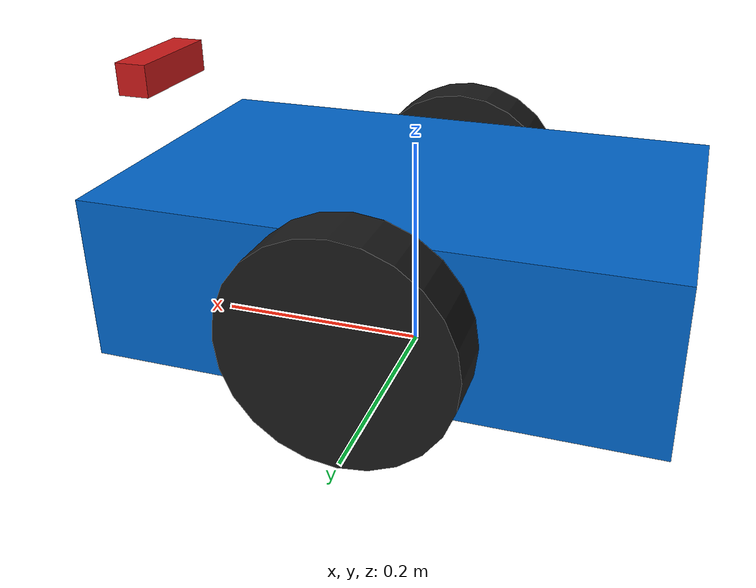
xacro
<?xml version="1.0"?>
<robot xmlns:xacro="http://www.ros.org/wiki/xacro" name="amr_robot">

  <material name="blue"><color rgba="0.0 0.4 0.8 1.0"/></material>
  <material name="black"><color rgba="0.1 0.1 0.1 1.0"/></material>
  <material name="red"><color rgba="0.8 0.1 0.1 1.0"/></material>

  <!-- Base Footprint -->
  <link name="base_footprint"/>

  <joint name="base_joint" type="fixed">
    <parent link="base_footprint"/>
    <child link="base_link"/>
    <origin xyz="0 0 0.1" rpy="0 0 0"/>
  </joint>

  <!-- Base Link -->
  <link name="base_link">
    <visual>
      <geometry><box size="0.5 0.3 0.15"/></geometry>
      <material name="blue"/>
    </visual>
    <collision>
      <geometry><box size="0.5 0.3 0.15"/></geometry>
    </collision>
    <inertial>
      <mass value="5.0"/>
      <inertia ixx="0.046" ixy="0" ixz="0" iyy="0.113" iyz="0" izz="0.141"/>
    </inertial>
  </link>

  <!-- Drive Wheels Macro -->
  <xacro:macro name="wheel" params="prefix y_reflect">
    <joint name="${prefix}_wheel_joint" type="continuous">
      <parent link="base_link"/>
      <child link="${prefix}_wheel"/>
      <origin xyz="0.0 ${y_reflect * 0.18} 0.0" rpy="-1.5707963 0 0"/>
      <axis xyz="0 0 1"/>
    </joint>

    <link name="${prefix}_wheel">
      <visual>
        <geometry><cylinder radius="0.1" length="0.05"/></geometry>
        <material name="black"/>
      </visual>
      <collision>
        <geometry><cylinder radius="0.1" length="0.05"/></geometry>
      </collision>
      <inertial>
        <mass value="1.0"/>
        <inertia ixx="0.0027" ixy="0" ixz="0" iyy="0.0027" iyz="0" izz="0.005"/>
      </inertial>
    </link>

    <gazebo reference="${prefix}_wheel">
      <mu1>1.0</mu1>
      <mu2>1.0</mu2>
      <kp>1000000.0</kp>
      <kd>100.0</kd>
      <material>Gazebo/DarkGrey</material>
    </gazebo>
  </xacro:macro>

  <xacro:wheel prefix="left" y_reflect="1" />
  <xacro:wheel prefix="right" y_reflect="-1" />

  <!-- Caster Wheel -->
  <joint name="caster_joint" type="fixed">
    <parent link="base_link"/>
    <child link="caster_wheel"/>
    <origin xyz="0.2 0.0 -0.05" rpy="0 0 0"/>
  </joint>

  <link name="caster_wheel">
    <visual>
      <geometry><sphere radius="0.05"/></geometry>
      <material name="black"/>
    </visual>
    <collision>
      <geometry><sphere radius="0.05"/></geometry>
    </collision>
    <inertial>
      <mass value="0.5"/>
      <inertia ixx="0.0005" ixy="0" izz="0.0005" iyy="0.0005" iyz="0" ixz="0"/>
    </inertial>
  </link>

  <gazebo reference="caster_wheel">
    <mu1>0.0001</mu1>
    <mu2>0.0001</mu2>
    <material>Gazebo/DarkGrey</material>
  </gazebo>

  <!-- RGB-D Camera Physical Body -->
  <joint name="camera_joint" type="fixed">
    <parent link="base_link"/>
    <child link="camera_link"/>
    <origin xyz="0.25 0 0.15" rpy="0 0 0"/>
  </joint>

  <link name="camera_link">
    <visual>
      <geometry>
        <box size="0.03 0.1 0.03"/>
      </geometry>
      <material name="red"/>
    </visual>
    <collision>
      <geometry>
        <box size="0.03 0.1 0.03"/>
      </geometry>
    </collision>
    <inertial>
      <mass value="0.05"/>
      <inertia ixx="1e-4" ixy="0" ixz="0" iyy="1e-4" iyz="0" izz="1e-4"/>
    </inertial>
  </link>

  <!-- Optical Frame (Converts ROS body frame to Camera Optical Frame: Z forward, X right, Y down) -->
  <joint name="camera_optical_joint" type="fixed">
    <parent link="camera_link"/>
    <child link="camera_optical_frame"/>
    <origin xyz="0 0 0" rpy="-1.5707963 0 -1.5707963"/>
  </joint>

  <link name="camera_optical_frame"/>

  <!-- Gazebo RGB-D Camera Sensor Plugin -->
  <gazebo reference="camera_link">
    <material>Gazebo/Red</material>
    <sensor name="camera" type="depth">
      <always_on>true</always_on>
      <update_rate>20.0</update_rate>
      <camera>
        <horizontal_fov>1.047198</horizontal_fov>
        <image>
          <width>640</width>
          <height>480</height>
          <format>R8G8B8</format>
        </image>
        <clip>
          <near>0.05</near>
          <far>8.0</far>
        </clip>
      </camera>
      <plugin name="camera_controller" filename="libgazebo_ros_camera.so">
        <ros>
          <namespace>camera</namespace>
          <remapping>image_raw:=color/image_raw</remapping>
          <remapping>camera_info:=color/camera_info</remapping>
          <remapping>depth/image_raw:=depth/image_raw</remapping>
          <remapping>depth/camera_info:=depth/camera_info</remapping>
          <remapping>points:=depth/points</remapping>
        </ros>
        <frame_name>camera_optical_frame</frame_name>
        <min_depth>0.1</min_depth>
        <max_depth>8.0</max_depth>
      </plugin>
    </sensor>
  </gazebo>

  <!-- Differential Drive Plugin -->
  <gazebo>
    <plugin name="diff_drive" filename="libgazebo_ros_diff_drive.so">
      <update_rate>50</update_rate>
      <left_joint>left_wheel_joint</left_joint>
      <right_joint>right_wheel_joint</right_joint>
      <wheel_separation>0.36</wheel_separation>
      <wheel_diameter>0.2</wheel_diameter>
      <max_wheel_torque>20</max_wheel_torque>
      <max_wheel_acceleration>1.0</max_wheel_acceleration>
      <command_topic>cmd_vel</command_topic>
      <publish_odom>true</publish_odom>
      <publish_odom_tf>true</publish_odom_tf>
      <publish_wheel_tf>true</publish_wheel_tf>
      <odometry_topic>odom</odometry_topic>
      <odometry_frame>odom</odometry_frame>
      <robot_base_frame>base_footprint</robot_base_frame>
    </plugin>
  </gazebo>

</robot>
